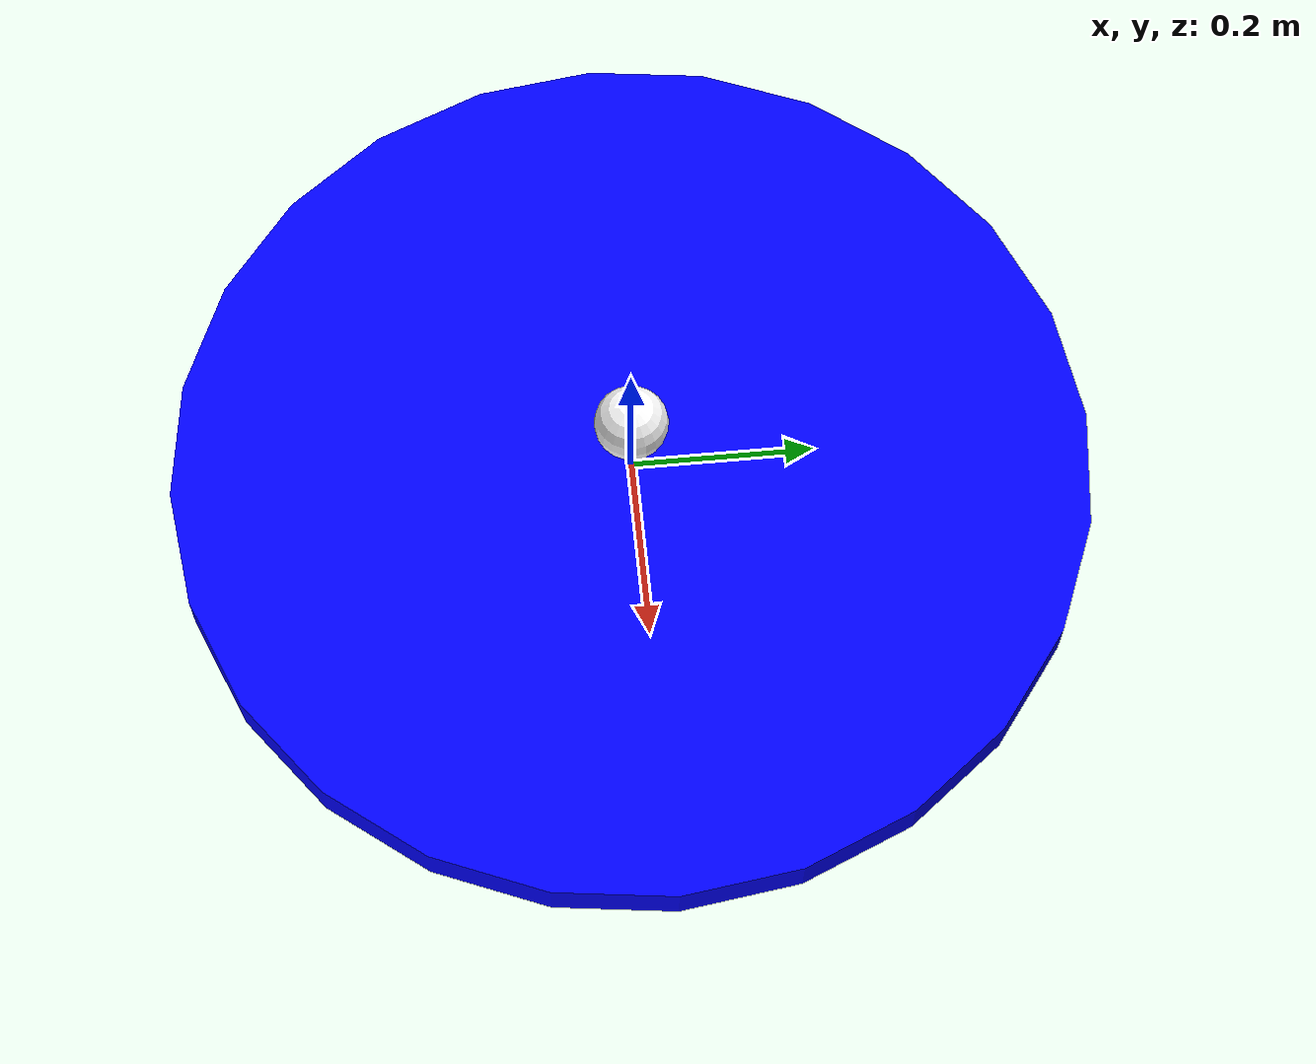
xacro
<?xml version="1.0"?>
<robot xmlns:xacro="http://ros.org/wiki/xacro" name="3dof_platform">

<!-- Platform -->
  <xacro:property name="platform_radius" value="0.5" />
  <xacro:property name="platform_thickness" value="0.05" />
  <xacro:property name="ball_radius" value="0.04" />

  <!-- Base link -->
  <link name="base_link">
    <visual>
      <geometry>
        <cylinder radius="${platform_radius}" length="${platform_thickness}" />
      </geometry>
      <material name="blue">
        <color rgba="0 0 1 1"/>
      </material>
    </visual>
  </link>

  <!-- Ping pong ball link -->
  <link name="ping_pong_ball">
    <visual>
      <geometry>
        <sphere radius="${ball_radius}" />
      </geometry>
      <material name="white">
        <color rgba="1 1 1 1"/>
      </material>
    </visual>
  </link>

  <!-- Fixed joint connecting ping pong ball to the base -->
  <joint name="ball_joint" type="fixed">
    <parent link="base_link"/>
    <child link="ping_pong_ball"/>
    <origin xyz="0 0 0.1" rpy="0 0 0"/> <!-- Position the ball above the base -->
  </joint>

</robot>
